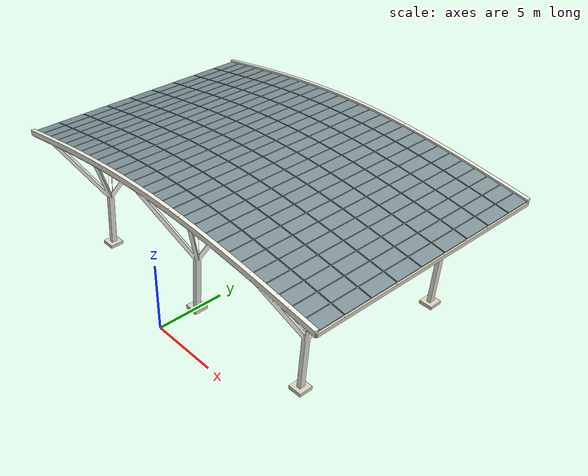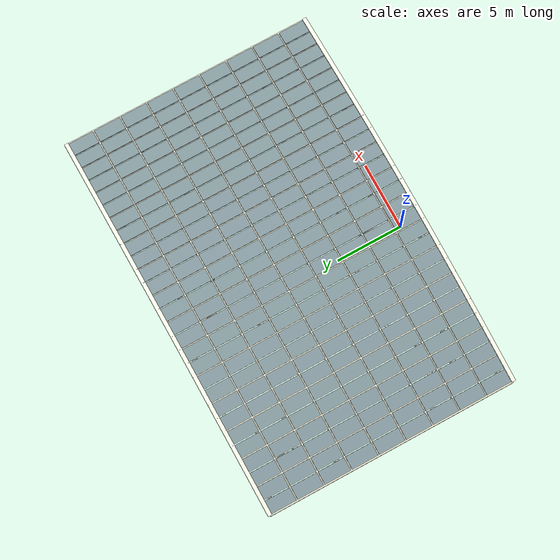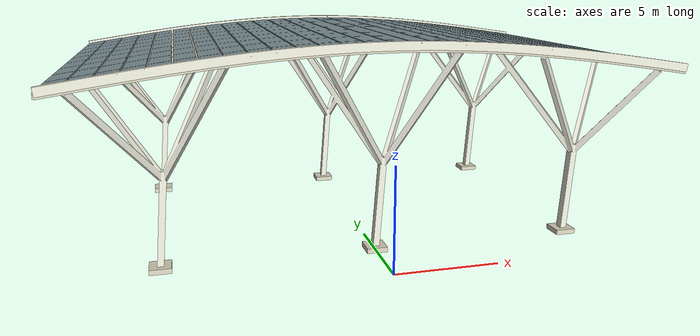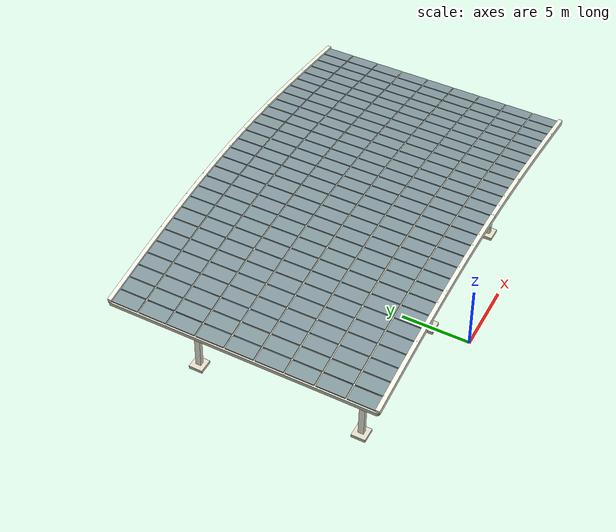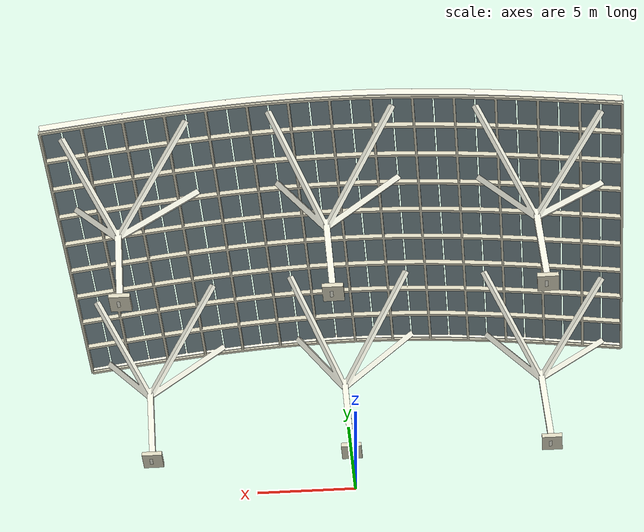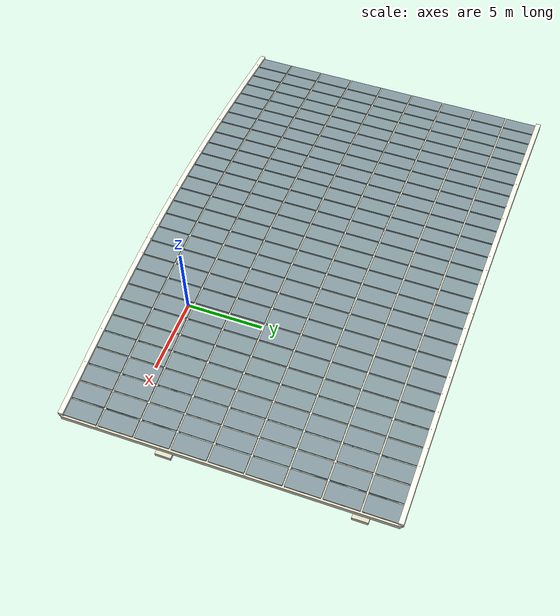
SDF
<?xml version='1.0' encoding='utf-8'?>
<sdf version="1.10">
  <model name="pergola">
    <static>true</static>
    <link name="body">
      <visual name="ivory">
        <geometry>
          <mesh>
            <uri>model://pergola/meshes/ivory.obj</uri>
          </mesh>
        </geometry>
        <material>
          <ambient>0.86 0.84 0.75 1</ambient>
          <diffuse>0.86 0.84 0.75 1</diffuse>
          <specular>.08 .08 .08 1</specular>
        </material>
      </visual>
      <visual name="roof">
        <geometry>
          <mesh>
            <uri>model://pergola/meshes/roof.obj</uri>
          </mesh>
        </geometry>
        <material>
          <ambient>0.5 0.58 0.6 1</ambient>
          <diffuse>0.5 0.58 0.6 1</diffuse>
          <specular>.08 .08 .08 1</specular>
        </material>
      </visual>
      <visual name="white">
        <geometry>
          <mesh>
            <uri>model://pergola/meshes/white.obj</uri>
          </mesh>
        </geometry>
        <material>
          <ambient>0.94 0.94 0.88 1</ambient>
          <diffuse>0.94 0.94 0.88 1</diffuse>
          <specular>.08 .08 .08 1</specular>
        </material>
      </visual>
    </link>
  </model>
</sdf>
